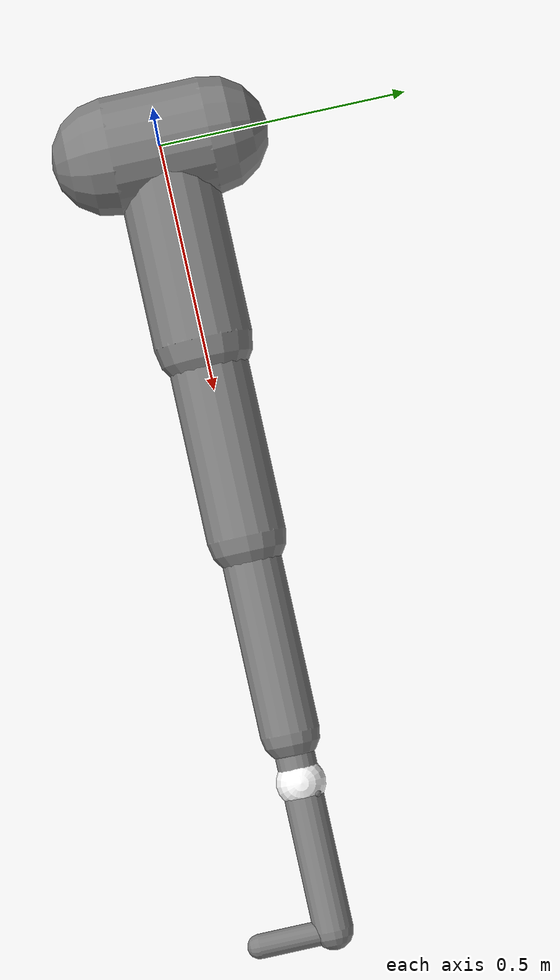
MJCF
<mujoco model="4link6joint">
  <compiler coordinate="local" angle="radian" inertiafromgeom="true" meshdir="Meshes/"/>
  <option timestep="0.005" gravity="0 0 0" iterations='20' integrator="RK4"/>

  <default>
    <joint limited="true" range="-3.14159 3.14159" damping="0.2" armature=".01"/>
    <geom friction=".5 .1 .1" margin="0.002" contype="1" conaffinity="0" type="mesh"/>
  </default>

  <worldbody>
      <body name="palm" pos="0 0 0">
          <geom type="capsule" fromto="0 -0.1 0 0 0.1 0" size="0.12"/>

          <body name="proximal_1" pos="0 0 0">
              <joint name="y1" type="hinge" pos="0 0 0" axis="0 1 0" range="-2.5236 2.3963" damping="1.0" />
              <joint name="z1" type="hinge" pos="0 0 0" axis="0 0 1" range="-2.5236 2.3963" damping="1.0" />
              <geom type="capsule"  fromto="0 0 0 0.4 0 0" size="0.1" contype="1" conaffinity="1"/>
              <body name="distal_1" pos="0.4 0 0">
                  <joint name="y2" type="hinge" pos="0 0 0" axis="0 1 0" range="-2.3213 2.3" damping="1.0"/>
                  <geom type="capsule"  fromto="0 0 0 0.4 0 0" size="0.08" contype="1" conaffinity="1"/>
                  <body name="distal_2" pos="0.4 0 0">
                      <joint name="y3" type="hinge" pos="0 0 0" axis="0 1 0" range="-2.3213 2.3" damping="1.0"/>
                      <joint name="z3" type="hinge" pos="0 0 0" axis="0 0 1" range="-2.3213 2.3" damping="1.0"/>
                      <geom type="capsule" fromto="0 0 0 0.4 0 0" size="0.06" contype="1" conaffinity="1"/>
                      <body name="distal_3" pos="0.4 0 0">
                          <joint name="y4" type="hinge" pos="0 0 0" axis="0 1 0" range="-2.3213 2.3" damping="1.0"/>
                          <geom type="capsule" fromto="0 0 0 0.4 0 0" size="0.04" contype="1" conaffinity="1"/>
                          <body name="distal_4" pos="0.4 0 0">
                              <geom type="capsule" fromto="0 0 0 0 -0.15 0" size="0.025" contype="1" conaffinity="1" density="0.0001" />
                              <site name="tip arm" pos="0 -0.15 0" size="0.01" />
                          </body>
                      </body>
                  </body>
              </body>
          </body>
      </body>
    <body name="object" pos="1.3 0.0 0.0">
        <geom rgba="1. 1. 1. 1" type="sphere" size="0.05 0.05 0.05" density='0.00001' contype="1" conaffinity="1"/>
        <joint name="obj_slidez" type="slide" pos="0.1 0.05 0.05" axis="0 0 1" range="-10.3213 10.3" damping="0.005"/>
        <joint name="obj_slidex" type="slide" pos="0.05 0.05 0.05" axis="1 0 0" range="-10.3213 10.3" damping="0.005"/>
        <body name="distal_10" pos="0 0 0">
            <site name="obj_pos" pos="0.025 0.025 0.025" size="0.01" />
        </body>
    </body>

    <body name="goal" pos="0 0 0">
        <geom rgba="1. 0. 0. 1" type="box" size="0.05 0.05 0.05" density='0.00001' contype="0" conaffinity="0"/>
        <body name="distal_11" pos="0 0 0">
            <site name="goal_pos" pos="0.05 0.05 0.05" size="0.01" />
        </body>
    </body>
  </worldbody>

  <actuator>
      <motor joint="y1" name="Ay1"/>
      <motor joint="z1" name="Az1"/>
      <motor joint="y2" name="Ay2"/>
      <motor joint="y3" name="Ay3"/>
      <motor joint="z3" name="Az3"/>
      <motor joint="y4" name="Ay4"/>
  </actuator>
</mujoco>
